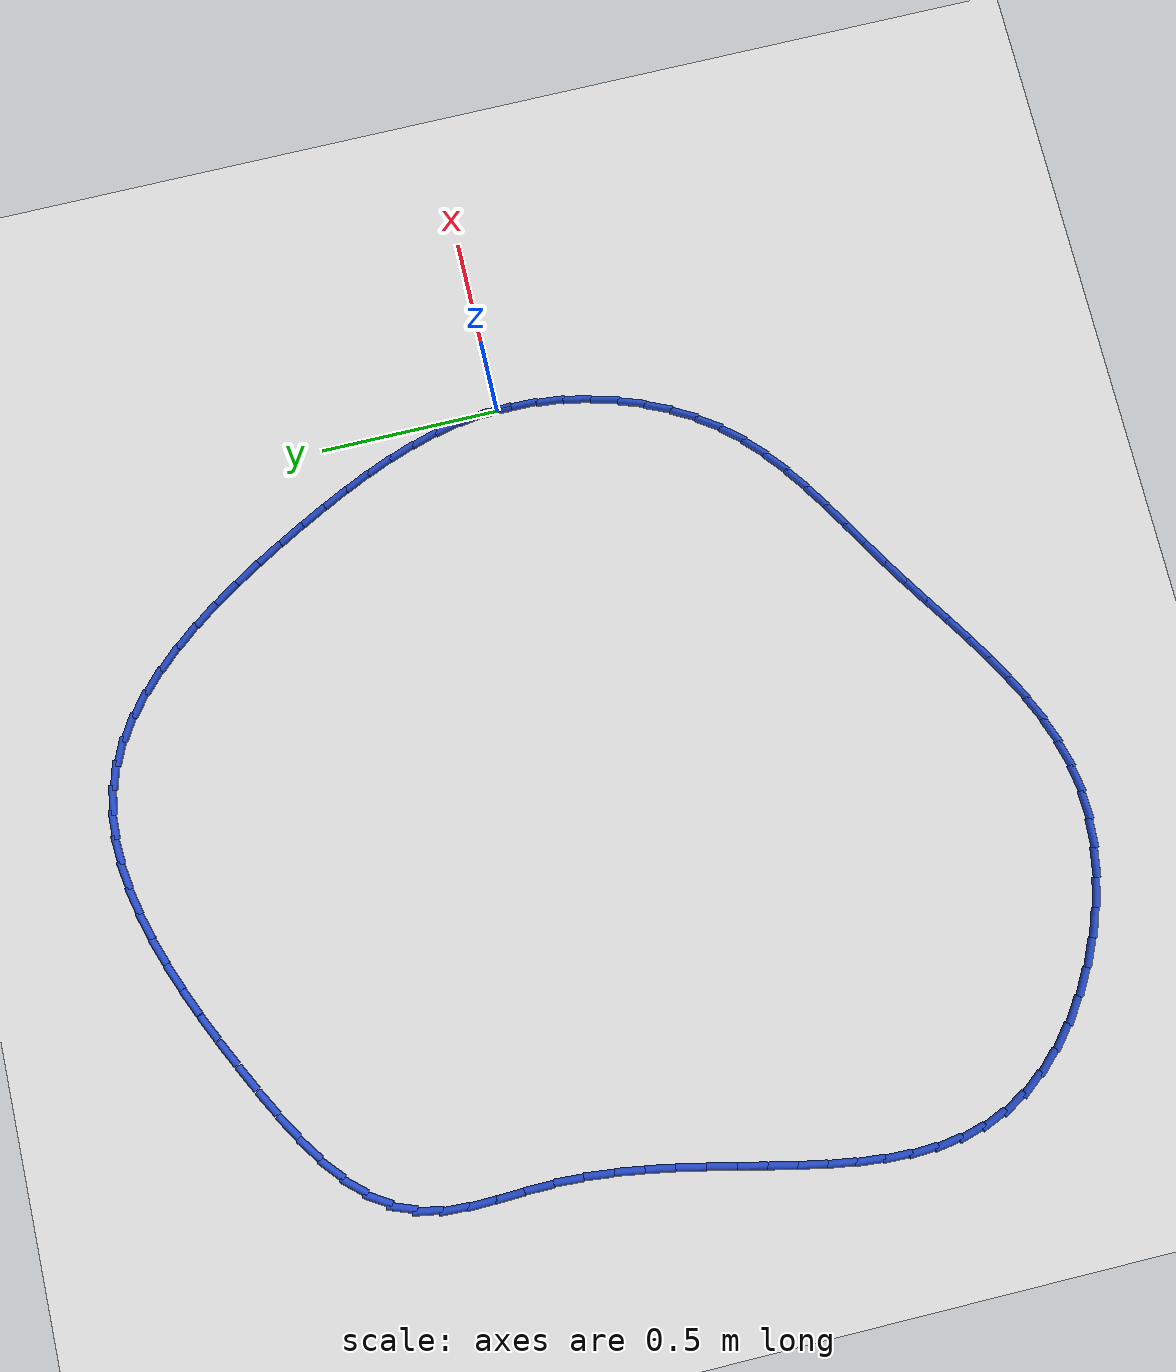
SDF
<sdf version="1.6">
 <world name="default">
  <light name="sun" type="directional">
   <pose>0 0 10 0 -0 0</pose>
   <diffuse>0.8 0.8 0.8 1</diffuse>
   <specular>0.2 0.2 0.2 1</specular>
   <attenuation>
    <range>1000</range>
    <constant>0.9</constant>
    <linear>0.01</linear>
    <quadratic>0.001</quadratic>
   </attenuation>
   <direction>-0.5 0.1 -0.9</direction>
  </light>
  <model name="ground_plane">
   <static>1</static>
   <link name="link">
    <collision name="collision">
     <geometry><plane><normal>0 0 1</normal><size>100 100</size></plane></geometry>
     <surface><friction><ode><mu>100</mu><mu2>50</mu2></ode></friction></surface>
    </collision>
    <visual name="visual">
     <cast_shadows>0</cast_shadows>
     <geometry><plane><normal>0 0 1</normal><size>100 100</size></plane></geometry>
     <material>
      <script><uri>file://media/materials/scripts/gazebo.material</uri><name>Gazebo/WhiteGlow</name></script>
     </material>
    </visual>
   </link>
  </model>
  <gravity>0 0 -9.8</gravity>
  <magnetic_field>6e-06 2.3e-05 -4.2e-05</magnetic_field>
  <atmosphere type="adiabatic"/>
  <physics name="default_physics" default="0" type="ode">
   <max_step_size>0.001</max_step_size>
   <real_time_factor>1</real_time_factor>
   <real_time_update_rate>1000</real_time_update_rate>
  </physics>
  <scene><ambient>0.4 0.4 0.4 1</ambient><background>0.7 0.7 0.7 1</background><shadows>1</shadows></scene>
  <spherical_coordinates>
   <surface_model>EARTH_WGS84</surface_model>
   <latitude_deg>0</latitude_deg>
   <longitude_deg>0</longitude_deg>
   <elevation>0</elevation>
   <heading_deg>0</heading_deg>
  </spherical_coordinates>
  <model name="line">
   <link name="link_0">
    <pose>1.3877787807814457e-16 9.71445146547012e-17 0.01 0 1.57 -1.4955842060642794</pose>
    <collision name="collision">
     <geometry><cylinder><radius>0.01</radius><length>0.08</length></cylinder></geometry>
    </collision>
    <visual name="visual">
     <material>
      <script><name>Gazebo/Blue</name><uri>file://media/materials/scripts/gazebo.material</uri></script>
     </material>
     <geometry><cylinder><radius>0.01</radius><length>0.08</length></cylinder></geometry>
    </visual>
   </link>
   <link name="link_1">
    <pose>-0.005467411567559248 0.0725561007753156 0.01 0 1.57 -1.41364982740094</pose>
    <collision name="collision">
     <geometry><cylinder><radius>0.01</radius><length>0.08</length></cylinder></geometry>
    </collision>
    <visual name="visual">
     <material>
      <script><name>Gazebo/Blue</name><uri>file://media/materials/scripts/gazebo.material</uri></script>
     </material>
     <geometry><cylinder><radius>0.01</radius><length>0.08</length></cylinder></geometry>
    </visual>
   </link>
   <link name="link_2">
    <pose>-0.016756546712793648 0.14380206142366403 0.01 0 1.57 -1.339130992052664</pose>
    <collision name="collision">
     <geometry><cylinder><radius>0.01</radius><length>0.08</length></cylinder></geometry>
    </collision>
    <visual name="visual">
     <material>
      <script><name>Gazebo/Blue</name><uri>file://media/materials/scripts/gazebo.material</uri></script>
     </material>
     <geometry><cylinder><radius>0.01</radius><length>0.08</length></cylinder></geometry>
    </visual>
   </link>
   <link name="link_3">
    <pose>-0.033318861611727854 0.21401090823001373 0.01 0 1.57 -1.2733588835503626</pose>
    <collision name="collision">
     <geometry><cylinder><radius>0.01</radius><length>0.08</length></cylinder></geometry>
    </collision>
    <visual name="visual">
     <material>
      <script><name>Gazebo/Blue</name><uri>file://media/materials/scripts/gazebo.material</uri></script>
     </material>
     <geometry><cylinder><radius>0.01</radius><length>0.08</length></cylinder></geometry>
    </visual>
   </link>
   <link name="link_4">
    <pose>-0.05460581244038674 0.2834556674793333 0.01 0 1.57 -1.217052137117</pose>
    <collision name="collision">
     <geometry><cylinder><radius>0.01</radius><length>0.08</length></cylinder></geometry>
    </collision>
    <visual name="visual">
     <material>
      <script><name>Gazebo/Blue</name><uri>file://media/materials/scripts/gazebo.material</uri></script>
     </material>
     <geometry><cylinder><radius>0.01</radius><length>0.08</length></cylinder></geometry>
    </visual>
   </link>
   <link name="link_5">
    <pose>-0.08006885537479502 0.3524093654565909 0.01 0 1.57 -1.170430817706704</pose>
    <collision name="collision">
     <geometry><cylinder><radius>0.01</radius><length>0.08</length></cylinder></geometry>
    </collision>
    <visual name="visual">
     <material>
      <script><name>Gazebo/Blue</name><uri>file://media/materials/scripts/gazebo.material</uri></script>
     </material>
     <geometry><cylinder><radius>0.01</radius><length>0.08</length></cylinder></geometry>
    </visual>
   </link>
   <link name="link_6">
    <pose>-0.10915944659097758 0.4211450284467553 0.01 0 1.57 -1.1333662098211688</pose>
    <collision name="collision">
     <geometry><cylinder><radius>0.01</radius><length>0.08</length></cylinder></geometry>
    </collision>
    <visual name="visual">
     <material>
      <script><name>Gazebo/Blue</name><uri>file://media/materials/scripts/gazebo.material</uri></script>
     </material>
     <geometry><cylinder><radius>0.01</radius><length>0.08</length></cylinder></geometry>
    </visual>
   </link>
   <link name="link_7">
    <pose>-0.14132904226495924 0.48993568273479476 0.01 0 1.57 -1.1055213052379582</pose>
    <collision name="collision">
     <geometry><cylinder><radius>0.01</radius><length>0.08</length></cylinder></geometry>
    </collision>
    <visual name="visual">
     <material>
      <script><name>Gazebo/Blue</name><uri>file://media/materials/scripts/gazebo.material</uri></script>
     </material>
     <geometry><cylinder><radius>0.01</radius><length>0.08</length></cylinder></geometry>
    </visual>
   </link>
   <link name="link_8">
    <pose>-0.17602909857276472 0.5590543546056775 0.01 0 1.57 -1.0860036794157346</pose>
    <collision name="collision">
     <geometry><cylinder><radius>0.01</radius><length>0.08</length></cylinder></geometry>
    </collision>
    <visual name="visual">
     <material>
      <script><name>Gazebo/Blue</name><uri>file://media/materials/scripts/gazebo.material</uri></script>
     </material>
     <geometry><cylinder><radius>0.01</radius><length>0.08</length></cylinder></geometry>
    </visual>
   </link>
   <link name="link_9">
    <pose>-0.21273218468617577 0.6287369993127941 0.01 0 1.57 -1.0672026564182744</pose>
    <collision name="collision">
     <geometry><cylinder><radius>0.01</radius><length>0.08</length></cylinder></geometry>
    </collision>
    <visual name="visual">
     <material>
      <script><name>Gazebo/Blue</name><uri>file://media/materials/scripts/gazebo.material</uri></script>
     </material>
     <geometry><cylinder><radius>0.01</radius><length>0.08</length></cylinder></geometry>
    </visual>
   </link>
   <link name="link_10">
    <pose>-0.2512441236565394 0.6986344317895505 0.01 0 1.57 -1.0430517549712204</pose>
    <collision name="collision">
     <geometry><cylinder><radius>0.01</radius><length>0.08</length></cylinder></geometry>
    </collision>
    <visual name="visual">
     <material>
      <script><name>Gazebo/Blue</name><uri>file://media/materials/scripts/gazebo.material</uri></script>
     </material>
     <geometry><cylinder><radius>0.01</radius><length>0.08</length></cylinder></geometry>
    </visual>
   </link>
   <link name="link_11">
    <pose>-0.2916364467260727 0.767930926036564 0.01 0 1.57 -1.0128877663310525</pose>
    <collision name="collision">
     <geometry><cylinder><radius>0.01</radius><length>0.08</length></cylinder></geometry>
    </collision>
    <visual name="visual">
     <material>
      <script><name>Gazebo/Blue</name><uri>file://media/materials/scripts/gazebo.material</uri></script>
     </material>
     <geometry><cylinder><radius>0.01</radius><length>0.08</length></cylinder></geometry>
    </visual>
   </link>
   <link name="link_12">
    <pose>-0.333988071356721 0.8357977870382143 0.01 0 1.57 -0.975957592531371</pose>
    <collision name="collision">
     <geometry><cylinder><radius>0.01</radius><length>0.08</length></cylinder></geometry>
    </collision>
    <visual name="visual">
     <material>
      <script><name>Gazebo/Blue</name><uri>file://media/materials/scripts/gazebo.material</uri></script>
     </material>
     <geometry><cylinder><radius>0.01</radius><length>0.08</length></cylinder></geometry>
    </visual>
   </link>
   <link name="link_13">
    <pose>-0.37837791501042994 0.9014063197788814 0.01 0 1.57 -0.9312391922005855</pose>
    <collision name="collision">
     <geometry><cylinder><radius>0.01</radius><length>0.08</length></cylinder></geometry>
    </collision>
    <visual name="visual">
     <material>
      <script><name>Gazebo/Blue</name><uri>file://media/materials/scripts/gazebo.material</uri></script>
     </material>
     <geometry><cylinder><radius>0.01</radius><length>0.08</length></cylinder></geometry>
    </visual>
   </link>
   <link name="link_14">
    <pose>-0.4248848951491446 0.9639278292429448 0.01 0 1.57 -0.8774203138194414</pose>
    <collision name="collision">
     <geometry><cylinder><radius>0.01</radius><length>0.08</length></cylinder></geometry>
    </collision>
    <visual name="visual">
     <material>
      <script><name>Gazebo/Blue</name><uri>file://media/materials/scripts/gazebo.material</uri></script>
     </material>
     <geometry><cylinder><radius>0.01</radius><length>0.08</length></cylinder></geometry>
    </visual>
   </link>
   <link name="link_15">
    <pose>-0.4735879292348106 1.0225336204147848 0.01 0 1.57 -0.8128939918813674</pose>
    <collision name="collision">
     <geometry><cylinder><radius>0.01</radius><length>0.08</length></cylinder></geometry>
    </collision>
    <visual name="visual">
     <material>
      <script><name>Gazebo/Blue</name><uri>file://media/materials/scripts/gazebo.material</uri></script>
     </material>
     <geometry><cylinder><radius>0.01</radius><length>0.08</length></cylinder></geometry>
    </visual>
   </link>
   <link name="link_16">
    <pose>-0.5245659347293732 1.0763949982787808 0.01 0 1.57 -0.7358067305513654</pose>
    <collision name="collision">
     <geometry><cylinder><radius>0.01</radius><length>0.08</length></cylinder></geometry>
    </collision>
    <visual name="visual">
     <material>
      <script><name>Gazebo/Blue</name><uri>file://media/materials/scripts/gazebo.material</uri></script>
     </material>
     <geometry><cylinder><radius>0.01</radius><length>0.08</length></cylinder></geometry>
    </visual>
   </link>
   <link name="link_17">
    <pose>-0.5778978290947777 1.1246832678193124 0.01 0 1.57 -0.6442230747430463</pose>
    <collision name="collision">
     <geometry><cylinder><radius>0.01</radius><length>0.08</length></cylinder></geometry>
    </collision>
    <visual name="visual">
     <material>
      <script><name>Gazebo/Blue</name><uri>file://media/materials/scripts/gazebo.material</uri></script>
     </material>
     <geometry><cylinder><radius>0.01</radius><length>0.08</length></cylinder></geometry>
    </visual>
   </link>
   <link name="link_18">
    <pose>-0.6336625297929697 1.1665697340207597 0.01 0 1.57 -0.5365003749126304</pose>
    <collision name="collision">
     <geometry><cylinder><radius>0.01</radius><length>0.08</length></cylinder></geometry>
    </collision>
    <visual name="visual">
     <material>
      <script><name>Gazebo/Blue</name><uri>file://media/materials/scripts/gazebo.material</uri></script>
     </material>
     <geometry><cylinder><radius>0.01</radius><length>0.08</length></cylinder></geometry>
    </visual>
   </link>
   <link name="link_19">
    <pose>-0.6919389542858945 1.2012257018675028 0.01 0 1.57 -0.4119612640818675</pose>
    <collision name="collision">
     <geometry><cylinder><radius>0.01</radius><length>0.08</length></cylinder></geometry>
    </collision>
    <visual name="visual">
     <material>
      <script><name>Gazebo/Blue</name><uri>file://media/materials/scripts/gazebo.material</uri></script>
     </material>
     <geometry><cylinder><radius>0.01</radius><length>0.08</length></cylinder></geometry>
    </visual>
   </link>
   <link name="link_20">
    <pose>-0.7528060200354976 1.227822476343921 0.01 0 1.57 -0.27530872110064153</pose>
    <collision name="collision">
     <geometry><cylinder><radius>0.01</radius><length>0.08</length></cylinder></geometry>
    </collision>
    <visual name="visual">
     <material>
      <script><name>Gazebo/Blue</name><uri>file://media/materials/scripts/gazebo.material</uri></script>
     </material>
     <geometry><cylinder><radius>0.01</radius><length>0.08</length></cylinder></geometry>
    </visual>
   </link>
   <link name="link_21">
    <pose>-0.8162886082028623 1.2457551611444366 0.01 0 1.57 -0.14541691434787443</pose>
    <collision name="collision">
     <geometry><cylinder><radius>0.01</radius><length>0.08</length></cylinder></geometry>
    </collision>
    <visual name="visual">
     <material>
      <script><name>Gazebo/Blue</name><uri>file://media/materials/scripts/gazebo.material</uri></script>
     </material>
     <geometry><cylinder><radius>0.01</radius><length>0.08</length></cylinder></geometry>
    </visual>
   </link>
   <link name="link_22">
    <pose>-0.8821737183862176 1.255404078900756 0.01 0 1.57 -0.029641752607562417</pose>
    <collision name="collision">
     <geometry><cylinder><radius>0.01</radius><length>0.08</length></cylinder></geometry>
    </collision>
    <visual name="visual">
     <material>
      <script><name>Gazebo/Blue</name><uri>file://media/materials/scripts/gazebo.material</uri></script>
     </material>
     <geometry><cylinder><radius>0.01</radius><length>0.08</length></cylinder></geometry>
    </visual>
   </link>
   <link name="link_23">
    <pose>-0.9501829101280536 1.257420581160816 0.01 0 1.57 0.07095028898332861</pose>
    <collision name="collision">
     <geometry><cylinder><radius>0.01</radius><length>0.08</length></cylinder></geometry>
    </collision>
    <visual name="visual">
     <material>
      <script><name>Gazebo/Blue</name><uri>file://media/materials/scripts/gazebo.material</uri></script>
     </material>
     <geometry><cylinder><radius>0.01</radius><length>0.08</length></cylinder></geometry>
    </visual>
   </link>
   <link name="link_24">
    <pose>-1.0200377410334396 1.2524560274966354 0.01 0 1.57 0.15683529921645634</pose>
    <collision name="collision">
     <geometry><cylinder><radius>0.01</radius><length>0.08</length></cylinder></geometry>
    </collision>
    <visual name="visual">
     <material>
      <script><name>Gazebo/Blue</name><uri>file://media/materials/scripts/gazebo.material</uri></script>
     </material>
     <geometry><cylinder><radius>0.01</radius><length>0.08</length></cylinder></geometry>
    </visual>
   </link>
   <link name="link_25">
    <pose>-1.091459768707447 1.2411617774802346 0.01 0 1.57 0.22931981066903037</pose>
    <collision name="collision">
     <geometry><cylinder><radius>0.01</radius><length>0.08</length></cylinder></geometry>
    </collision>
    <visual name="visual">
     <material>
      <script><name>Gazebo/Blue</name><uri>file://media/materials/scripts/gazebo.material</uri></script>
     </material>
     <geometry><cylinder><radius>0.01</radius><length>0.08</length></cylinder></geometry>
    </visual>
   </link>
   <link name="link_26">
    <pose>-1.1641705507551465 1.2241891906836333 0.01 0 1.57 0.29000307534637887</pose>
    <collision name="collision">
     <geometry><cylinder><radius>0.01</radius><length>0.08</length></cylinder></geometry>
    </collision>
    <visual name="visual">
     <material>
      <script><name>Gazebo/Blue</name><uri>file://media/materials/scripts/gazebo.material</uri></script>
     </material>
     <geometry><cylinder><radius>0.01</radius><length>0.08</length></cylinder></geometry>
    </visual>
   </link>
   <link name="link_27">
    <pose>-1.2378916447816086 1.2021896266788512 0.01 0 1.57 0.34045859905072073</pose>
    <collision name="collision">
     <geometry><cylinder><radius>0.01</radius><length>0.08</length></cylinder></geometry>
    </collision>
    <visual name="visual">
     <material>
      <script><name>Gazebo/Blue</name><uri>file://media/materials/scripts/gazebo.material</uri></script>
     </material>
     <geometry><cylinder><radius>0.01</radius><length>0.08</length></cylinder></geometry>
    </visual>
   </link>
   <link name="link_28">
    <pose>-1.3123446083919037 1.175814445037908 0.01 0 1.57 0.3820807222219598</pose>
    <collision name="collision">
     <geometry><cylinder><radius>0.01</radius><length>0.08</length></cylinder></geometry>
    </collision>
    <visual name="visual">
     <material>
      <script><name>Gazebo/Blue</name><uri>file://media/materials/scripts/gazebo.material</uri></script>
     </material>
     <geometry><cylinder><radius>0.01</radius><length>0.08</length></cylinder></geometry>
    </visual>
   </link>
   <link name="link_29">
    <pose>-1.3872509991911026 1.1457150053328244 0.01 0 1.57 0.4160293666342314</pose>
    <collision name="collision">
     <geometry><cylinder><radius>0.01</radius><length>0.08</length></cylinder></geometry>
    </collision>
    <visual name="visual">
     <material>
      <script><name>Gazebo/Blue</name><uri>file://media/materials/scripts/gazebo.material</uri></script>
     </material>
     <geometry><cylinder><radius>0.01</radius><length>0.08</length></cylinder></geometry>
    </visual>
   </link>
   <link name="link_30">
    <pose>-1.4623323747842765 1.112542667135619 0.01 0 1.57 0.4432237739069377</pose>
    <collision name="collision">
     <geometry><cylinder><radius>0.01</radius><length>0.08</length></cylinder></geometry>
    </collision>
    <visual name="visual">
     <material>
      <script><name>Gazebo/Blue</name><uri>file://media/materials/scripts/gazebo.material</uri></script>
     </material>
     <geometry><cylinder><radius>0.01</radius><length>0.08</length></cylinder></geometry>
    </visual>
   </link>
   <link name="link_31">
    <pose>-1.5373102927764952 1.0769487900183115 0.01 0 1.57 0.464355679751144</pose>
    <collision name="collision">
     <geometry><cylinder><radius>0.01</radius><length>0.08</length></cylinder></geometry>
    </collision>
    <visual name="visual">
     <material>
      <script><name>Gazebo/Blue</name><uri>file://media/materials/scripts/gazebo.material</uri></script>
     </material>
     <geometry><cylinder><radius>0.01</radius><length>0.08</length></cylinder></geometry>
    </visual>
   </link>
   <link name="link_32">
    <pose>-1.61190631077283 1.0395847335529227 0.01 0 1.57 0.4817562809188126</pose>
    <collision name="collision">
     <geometry><cylinder><radius>0.01</radius><length>0.08</length></cylinder></geometry>
    </collision>
    <visual name="visual">
     <material>
      <script><name>Gazebo/Blue</name><uri>file://media/materials/scripts/gazebo.material</uri></script>
     </material>
     <geometry><cylinder><radius>0.01</radius><length>0.08</length></cylinder></geometry>
    </visual>
   </link>
   <link name="link_33">
    <pose>-1.685719767778096 1.0009917229625414 0.01 0 1.57 0.5097504942388836</pose>
    <collision name="collision">
     <geometry><cylinder><radius>0.01</radius><length>0.08</length></cylinder></geometry>
    </collision>
    <visual name="visual">
     <material>
      <script><name>Gazebo/Blue</name><uri>file://media/materials/scripts/gazebo.material</uri></script>
     </material>
     <geometry><cylinder><radius>0.01</radius><length>0.08</length></cylinder></geometry>
    </visual>
   </link>
   <link name="link_34">
    <pose>-1.7574447391195878 0.9608952269035314 0.01 0 1.57 0.5563551199918052</pose>
    <collision name="collision">
     <geometry><cylinder><radius>0.01</radius><length>0.08</length></cylinder></geometry>
    </collision>
    <visual name="visual">
     <material>
      <script><name>Gazebo/Blue</name><uri>file://media/materials/scripts/gazebo.material</uri></script>
     </material>
     <geometry><cylinder><radius>0.01</radius><length>0.08</length></cylinder></geometry>
    </visual>
   </link>
   <link name="link_35">
    <pose>-1.8253687775407297 0.9186543859937546 0.01 0 1.57 0.6250091149030332</pose>
    <collision name="collision">
     <geometry><cylinder><radius>0.01</radius><length>0.08</length></cylinder></geometry>
    </collision>
    <visual name="visual">
     <material>
      <script><name>Gazebo/Blue</name><uri>file://media/materials/scripts/gazebo.material</uri></script>
     </material>
     <geometry><cylinder><radius>0.01</radius><length>0.08</length></cylinder></geometry>
    </visual>
   </link>
   <link name="link_36">
    <pose>-1.8877775014348808 0.8736265977580855 0.01 0 1.57 0.720630471023452</pose>
    <collision name="collision">
     <geometry><cylinder><radius>0.01</radius><length>0.08</length></cylinder></geometry>
    </collision>
    <visual name="visual">
     <material>
      <script><name>Gazebo/Blue</name><uri>file://media/materials/scripts/gazebo.material</uri></script>
     </material>
     <geometry><cylinder><radius>0.01</radius><length>0.08</length></cylinder></geometry>
    </visual>
   </link>
   <link name="link_37">
    <pose>-1.9429565291954016 0.8251692597213972 0.01 0 1.57 0.8490449418464202</pose>
    <collision name="collision">
     <geometry><cylinder><radius>0.01</radius><length>0.08</length></cylinder></geometry>
    </collision>
    <visual name="visual">
     <material>
      <script><name>Gazebo/Blue</name><uri>file://media/materials/scripts/gazebo.material</uri></script>
     </material>
     <geometry><cylinder><radius>0.01</radius><length>0.08</length></cylinder></geometry>
    </visual>
   </link>
   <link name="link_38">
    <pose>-1.9891914792156498 0.7726397694085639 0.01 0 1.57 1.0147280028547123</pose>
    <collision name="collision">
     <geometry><cylinder><radius>0.01</radius><length>0.08</length></cylinder></geometry>
    </collision>
    <visual name="visual">
     <material>
      <script><name>Gazebo/Blue</name><uri>file://media/materials/scripts/gazebo.material</uri></script>
     </material>
     <geometry><cylinder><radius>0.01</radius><length>0.08</length></cylinder></geometry>
    </visual>
   </link>
   <link name="link_39">
    <pose>-2.0247679698889858 0.7153955243444597 0.01 0 1.57 1.2150935376957075</pose>
    <collision name="collision">
     <geometry><cylinder><radius>0.01</radius><length>0.08</length></cylinder></geometry>
    </collision>
    <visual name="visual">
     <material>
      <script><name>Gazebo/Blue</name><uri>file://media/materials/scripts/gazebo.material</uri></script>
     </material>
     <geometry><cylinder><radius>0.01</radius><length>0.08</length></cylinder></geometry>
    </visual>
   </link>
   <link name="link_40">
    <pose>-2.048019167311735 0.6528089758933149 0.01 0 1.57 1.4042646456864396</pose>
    <collision name="collision">
     <geometry><cylinder><radius>0.01</radius><length>0.08</length></cylinder></geometry>
    </collision>
    <visual name="visual">
     <material>
      <script><name>Gazebo/Blue</name><uri>file://media/materials/scripts/gazebo.material</uri></script>
     </material>
     <geometry><cylinder><radius>0.01</radius><length>0.08</length></cylinder></geometry>
    </visual>
   </link>
   <link name="link_41">
    <pose>-2.0594282837005364 0.5849332907196741 0.01 0 1.57 1.5288153546406225</pose>
    <collision name="collision">
     <geometry><cylinder><radius>0.01</radius><length>0.08</length></cylinder></geometry>
    </collision>
    <visual name="visual">
     <material>
      <script><name>Gazebo/Blue</name><uri>file://media/materials/scripts/gazebo.material</uri></script>
     </material>
     <geometry><cylinder><radius>0.01</radius><length>0.08</length></cylinder></geometry>
    </visual>
   </link>
   <link name="link_42">
    <pose>-2.0624597387773296 0.5127655006187404 0.01 0 1.57 -1.5487499628972865</pose>
    <collision name="collision">
     <geometry><cylinder><radius>0.01</radius><length>0.08</length></cylinder></geometry>
    </collision>
    <visual name="visual">
     <material>
      <script><name>Gazebo/Blue</name><uri>file://media/materials/scripts/gazebo.material</uri></script>
     </material>
     <geometry><cylinder><radius>0.01</radius><length>0.08</length></cylinder></geometry>
    </visual>
   </link>
   <link name="link_43">
    <pose>-2.060797318865984 0.43737208994345433 0.01 0 1.57 -1.536349341656345</pose>
    <collision name="collision">
     <geometry><cylinder><radius>0.01</radius><length>0.08</length></cylinder></geometry>
    </collision>
    <visual name="visual">
     <material>
      <script><name>Gazebo/Blue</name><uri>file://media/materials/scripts/gazebo.material</uri></script>
     </material>
     <geometry><cylinder><radius>0.01</radius><length>0.08</length></cylinder></geometry>
    </visual>
   </link>
   <link name="link_44">
    <pose>-2.058124810290367 0.3598195430467573 0.01 0 1.57 -1.5706732274415427</pose>
    <collision name="collision">
     <geometry><cylinder><radius>0.01</radius><length>0.08</length></cylinder></geometry>
    </collision>
    <visual name="visual">
     <material>
      <script><name>Gazebo/Blue</name><uri>file://media/materials/scripts/gazebo.material</uri></script>
     </material>
     <geometry><cylinder><radius>0.01</radius><length>0.08</length></cylinder></geometry>
    </visual>
   </link>
   <link name="link_45">
    <pose>-2.0581151288574886 0.2811722344637428 0.01 0 1.57 1.5088180892669445</pose>
    <collision name="collision">
     <geometry><cylinder><radius>0.01</radius><length>0.08</length></cylinder></geometry>
    </collision>
    <visual name="visual">
     <material>
      <script><name>Gazebo/Blue</name><uri>file://media/materials/scripts/gazebo.material</uri></script>
     </material>
     <geometry><cylinder><radius>0.01</radius><length>0.08</length></cylinder></geometry>
    </visual>
   </link>
   <link name="link_46">
    <pose>-2.063014866594892 0.20221770889655863 0.01 0 1.57 1.454600154294033</pose>
    <collision name="collision">
     <geometry><cylinder><radius>0.01</radius><length>0.08</length></cylinder></geometry>
    </collision>
    <visual name="visual">
     <material>
      <script><name>Gazebo/Blue</name><uri>file://media/materials/scripts/gazebo.material</uri></script>
     </material>
     <geometry><cylinder><radius>0.01</radius><length>0.08</length></cylinder></geometry>
    </visual>
   </link>
   <link name="link_47">
    <pose>-2.0722386833401383 0.1231938719497268 0.01 0 1.57 1.412126551946561</pose>
    <collision name="collision">
     <geometry><cylinder><radius>0.01</radius><length>0.08</length></cylinder></geometry>
    </collision>
    <visual name="visual">
     <material>
      <script><name>Gazebo/Blue</name><uri>file://media/materials/scripts/gazebo.material</uri></script>
     </material>
     <geometry><cylinder><radius>0.01</radius><length>0.08</length></cylinder></geometry>
    </visual>
   </link>
   <link name="link_48">
    <pose>-2.084867073932814 0.04427377239659573 0.01 0 1.57 1.3809337882895611</pose>
    <collision name="collision">
     <geometry><cylinder><radius>0.01</radius><length>0.08</length></cylinder></geometry>
    </collision>
    <visual name="visual">
     <material>
      <script><name>Gazebo/Blue</name><uri>file://media/materials/scripts/gazebo.material</uri></script>
     </material>
     <geometry><cylinder><radius>0.01</radius><length>0.08</length></cylinder></geometry>
    </visual>
   </link>
   <link name="link_49">
    <pose>-2.099980533212513 -0.03436954098948704 0.01 0 1.57 1.3606412942540402</pose>
    <collision name="collision">
     <geometry><cylinder><radius>0.01</radius><length>0.08</length></cylinder></geometry>
    </collision>
    <visual name="visual">
     <material>
      <script><name>Gazebo/Blue</name><uri>file://media/materials/scripts/gazebo.material</uri></script>
     </material>
     <geometry><cylinder><radius>0.01</radius><length>0.08</length></cylinder></geometry>
    </visual>
   </link>
   <link name="link_50">
    <pose>-2.116659556018827 -0.1125630194351728 0.01 0 1.57 1.351056752786211</pose>
    <collision name="collision">
     <geometry><cylinder><radius>0.01</radius><length>0.08</length></cylinder></geometry>
    </collision>
    <visual name="visual">
     <material>
      <script><name>Gazebo/Blue</name><uri>file://media/materials/scripts/gazebo.material</uri></script>
     </material>
     <geometry><cylinder><radius>0.01</radius><length>0.08</length></cylinder></geometry>
    </visual>
   </link>
   <link name="link_51">
    <pose>-2.1339846371913445 -0.19013361416711308 0.01 0 1.57 1.3522440792732102</pose>
    <collision name="collision">
     <geometry><cylinder><radius>0.01</radius><length>0.08</length></cylinder></geometry>
    </collision>
    <visual name="visual">
     <material>
      <script><name>Gazebo/Blue</name><uri>file://media/materials/scripts/gazebo.material</uri></script>
     </material>
     <geometry><cylinder><radius>0.01</radius><length>0.08</length></cylinder></geometry>
    </visual>
   </link>
   <link name="link_52">
    <pose>-2.1510362715696587 -0.2669082764119598 0.01 0 1.57 1.3645687727887315</pose>
    <collision name="collision">
     <geometry><cylinder><radius>0.01</radius><length>0.08</length></cylinder></geometry>
    </collision>
    <visual name="visual">
     <material>
      <script><name>Gazebo/Blue</name><uri>file://media/materials/scripts/gazebo.material</uri></script>
     </material>
     <geometry><cylinder><radius>0.01</radius><length>0.08</length></cylinder></geometry>
    </visual>
   </link>
   <link name="link_53">
    <pose>-2.16689495399336 -0.3427139573963646 0.01 0 1.57 1.388726533658649</pose>
    <collision name="collision">
     <geometry><cylinder><radius>0.01</radius><length>0.08</length></cylinder></geometry>
    </collision>
    <visual name="visual">
     <material>
      <script><name>Gazebo/Blue</name><uri>file://media/materials/scripts/gazebo.material</uri></script>
     </material>
     <geometry><cylinder><radius>0.01</radius><length>0.08</length></cylinder></geometry>
    </visual>
   </link>
   <link name="link_54">
    <pose>-2.18064117930204 -0.41737760834697907 0.01 0 1.57 1.4257489332023692</pose>
    <collision name="collision">
     <geometry><cylinder><radius>0.01</radius><length>0.08</length></cylinder></geometry>
    </collision>
    <visual name="visual">
     <material>
      <script><name>Gazebo/Blue</name><uri>file://media/materials/scripts/gazebo.material</uri></script>
     </material>
     <geometry><cylinder><radius>0.01</radius><length>0.08</length></cylinder></geometry>
    </visual>
   </link>
   <link name="link_55">
    <pose>-2.191355442335289 -0.4907261804904549 0.01 0 1.57 1.4769625677413531</pose>
    <collision name="collision">
     <geometry><cylinder><radius>0.01</radius><length>0.08</length></cylinder></geometry>
    </collision>
    <visual name="visual">
     <material>
      <script><name>Gazebo/Blue</name><uri>file://media/materials/scripts/gazebo.material</uri></script>
     </material>
     <geometry><cylinder><radius>0.01</radius><length>0.08</length></cylinder></geometry>
    </visual>
   </link>
   <link name="link_56">
    <pose>-2.1981182379326993 -0.5625866250534439 0.01 0 1.57 1.5438535215513631</pose>
    <collision name="collision">
     <geometry><cylinder><radius>0.01</radius><length>0.08</length></cylinder></geometry>
    </collision>
    <visual name="visual">
     <material>
      <script><name>Gazebo/Blue</name><uri>file://media/materials/scripts/gazebo.material</uri></script>
     </material>
     <geometry><cylinder><radius>0.01</radius><length>0.08</length></cylinder></geometry>
    </visual>
   </link>
   <link name="link_57">
    <pose>-2.2000100609338618 -0.6327858932625977 0.01 0 1.57 -1.5138310041667915</pose>
    <collision name="collision">
     <geometry><cylinder><radius>0.01</radius><length>0.08</length></cylinder></geometry>
    </collision>
    <visual name="visual">
     <material>
      <script><name>Gazebo/Blue</name><uri>file://media/materials/scripts/gazebo.material</uri></script>
     </material>
     <geometry><cylinder><radius>0.01</radius><length>0.08</length></cylinder></geometry>
    </visual>
   </link>
   <link name="link_58">
    <pose>-2.1961114061783675 -0.7011509363445675 0.01 0 1.57 -1.4122675120011015</pose>
    <collision name="collision">
     <geometry><cylinder><radius>0.01</radius><length>0.08</length></cylinder></geometry>
    </collision>
    <visual name="visual">
     <material>
      <script><name>Gazebo/Blue</name><uri>file://media/materials/scripts/gazebo.material</uri></script>
     </material>
     <geometry><cylinder><radius>0.01</radius><length>0.08</length></cylinder></geometry>
    </visual>
   </link>
   <link name="link_59">
    <pose>-2.185502768505807 -0.7675087055260059 0.01 0 1.57 -1.2939131517797329</pose>
    <collision name="collision">
     <geometry><cylinder><radius>0.01</radius><length>0.08</length></cylinder></geometry>
    </collision>
    <visual name="visual">
     <material>
      <script><name>Gazebo/Blue</name><uri>file://media/materials/scripts/gazebo.material</uri></script>
     </material>
     <geometry><cylinder><radius>0.01</radius><length>0.08</length></cylinder></geometry>
    </visual>
   </link>
   <link name="link_60">
    <pose>-2.1672646427557716 -0.8316861520335641 0.01 0 1.57 -1.1619336218504865</pose>
    <collision name="collision">
     <geometry><cylinder><radius>0.01</radius><length>0.08</length></cylinder></geometry>
    </collision>
    <visual name="visual">
     <material>
      <script><name>Gazebo/Blue</name><uri>file://media/materials/scripts/gazebo.material</uri></script>
     </material>
     <geometry><cylinder><radius>0.01</radius><length>0.08</length></cylinder></geometry>
    </visual>
   </link>
   <link name="link_61">
    <pose>-2.1404775237678537 -0.8935102270938942 0.01 0 1.57 -1.023695961944321</pose>
    <collision name="collision">
     <geometry><cylinder><radius>0.01</radius><length>0.08</length></cylinder></geometry>
    </collision>
    <visual name="visual">
     <material>
      <script><name>Gazebo/Blue</name><uri>file://media/materials/scripts/gazebo.material</uri></script>
     </material>
     <geometry><cylinder><radius>0.01</radius><length>0.08</length></cylinder></geometry>
    </visual>
   </link>
   <link name="link_62">
    <pose>-2.1043757010365693 -0.9527787848364397 0.01 0 1.57 -0.8969425129578544</pose>
    <collision name="collision">
     <geometry><cylinder><radius>0.01</radius><length>0.08</length></cylinder></geometry>
    </collision>
    <visual name="visual">
     <material>
      <script><name>Gazebo/Blue</name><uri>file://media/materials/scripts/gazebo.material</uri></script>
     </material>
     <geometry><cylinder><radius>0.01</radius><length>0.08</length></cylinder></geometry>
    </visual>
   </link>
   <link name="link_63">
    <pose>-2.0594370215755142 -1.0090544051931485 0.01 0 1.57 -0.7857376474460932</pose>
    <collision name="collision">
     <geometry><cylinder><radius>0.01</radius><length>0.08</length></cylinder></geometry>
    </collision>
    <visual name="visual">
     <material>
      <script><name>Gazebo/Blue</name><uri>file://media/materials/scripts/gazebo.material</uri></script>
     </material>
     <geometry><cylinder><radius>0.01</radius><length>0.08</length></cylinder></geometry>
    </visual>
   </link>
   <link name="link_64">
    <pose>-2.0067414706448385 -1.0617857468735388 0.01 0 1.57 -0.6863421864945508</pose>
    <collision name="collision">
     <geometry><cylinder><radius>0.01</radius><length>0.08</length></cylinder></geometry>
    </collision>
    <visual name="visual">
     <material>
      <script><name>Gazebo/Blue</name><uri>file://media/materials/scripts/gazebo.material</uri></script>
     </material>
     <geometry><cylinder><radius>0.01</radius><length>0.08</length></cylinder></geometry>
    </visual>
   </link>
   <link name="link_65">
    <pose>-1.9473729767192203 -1.1104207225527694 0.01 0 1.57 -0.5952309810633215</pose>
    <collision name="collision">
     <geometry><cylinder><radius>0.01</radius><length>0.08</length></cylinder></geometry>
    </collision>
    <visual name="visual">
     <material>
      <script><name>Gazebo/Blue</name><uri>file://media/materials/scripts/gazebo.material</uri></script>
     </material>
     <geometry><cylinder><radius>0.01</radius><length>0.08</length></cylinder></geometry>
    </visual>
   </link>
   <link name="link_66">
    <pose>-1.882415468273339 -1.154407244906 0.01 0 1.57 -0.5092482719949613</pose>
    <collision name="collision">
     <geometry><cylinder><radius>0.01</radius><length>0.08</length></cylinder></geometry>
    </collision>
    <visual name="visual">
     <material>
      <script><name>Gazebo/Blue</name><uri>file://media/materials/scripts/gazebo.material</uri></script>
     </material>
     <geometry><cylinder><radius>0.01</radius><length>0.08</length></cylinder></geometry>
    </visual>
   </link>
   <link name="link_67">
    <pose>-1.812952873781875 -1.1931932266083909 0.01 0 1.57 -0.42553960201838076</pose>
    <collision name="collision">
     <geometry><cylinder><radius>0.01</radius><length>0.08</length></cylinder></geometry>
    </collision>
    <visual name="visual">
     <material>
      <script><name>Gazebo/Blue</name><uri>file://media/materials/scripts/gazebo.material</uri></script>
     </material>
     <geometry><cylinder><radius>0.01</radius><length>0.08</length></cylinder></geometry>
    </visual>
   </link>
   <link name="link_68">
    <pose>-1.7400691217195066 -1.2262265803351013 0.01 0 1.57 -0.3414195695216346</pose>
    <collision name="collision">
     <geometry><cylinder><radius>0.01</radius><length>0.08</length></cylinder></geometry>
    </collision>
    <visual name="visual">
     <material>
      <script><name>Gazebo/Blue</name><uri>file://media/materials/scripts/gazebo.material</uri></script>
     </material>
     <geometry><cylinder><radius>0.01</radius><length>0.08</length></cylinder></geometry>
    </visual>
   </link>
   <link name="link_69">
    <pose>-1.6648481405609135 -1.2529552187612913 0.01 0 1.57 -0.2542274739489198</pose>
    <collision name="collision">
     <geometry><cylinder><radius>0.01</radius><length>0.08</length></cylinder></geometry>
    </collision>
    <visual name="visual">
     <material>
      <script><name>Gazebo/Blue</name><uri>file://media/materials/scripts/gazebo.material</uri></script>
     </material>
     <geometry><cylinder><radius>0.01</radius><length>0.08</length></cylinder></geometry>
    </visual>
   </link>
   <link name="link_70">
    <pose>-1.588373858780775 -1.2728270545621199 0.01 0 1.57 -0.16119807215022106</pose>
    <collision name="collision">
     <geometry><cylinder><radius>0.01</radius><length>0.08</length></cylinder></geometry>
    </collision>
    <visual name="visual">
     <material>
      <script><name>Gazebo/Blue</name><uri>file://media/materials/scripts/gazebo.material</uri></script>
     </material>
     <geometry><cylinder><radius>0.01</radius><length>0.08</length></cylinder></geometry>
    </visual>
   </link>
   <link name="link_71">
    <pose>-1.5117302048537715 -1.285290000412747 0.01 0 1.57 -0.05937844844639987</pose>
    <collision name="collision">
     <geometry><cylinder><radius>0.01</radius><length>0.08</length></cylinder></geometry>
    </collision>
    <visual name="visual">
     <material>
      <script><name>Gazebo/Blue</name><uri>file://media/materials/scripts/gazebo.material</uri></script>
     </material>
     <geometry><cylinder><radius>0.01</radius><length>0.08</length></cylinder></geometry>
    </visual>
   </link>
   <link name="link_72">
    <pose>-1.4360011072545809 -1.2897919689883324 0.01 0 1.57 0.05373100176645707</pose>
    <collision name="collision">
     <geometry><cylinder><radius>0.01</radius><length>0.08</length></cylinder></geometry>
    </collision>
    <visual name="visual">
     <material>
      <script><name>Gazebo/Blue</name><uri>file://media/materials/scripts/gazebo.material</uri></script>
     </material>
     <geometry><cylinder><radius>0.01</radius><length>0.08</length></cylinder></geometry>
    </visual>
   </link>
   <link name="link_73">
    <pose>-1.3622313965765867 -1.285824429676003 0.01 0 1.57 0.16846903068768537</pose>
    <collision name="collision">
     <geometry><cylinder><radius>0.01</radius><length>0.08</length></cylinder></geometry>
    </collision>
    <visual name="visual">
     <material>
      <script><name>Gazebo/Blue</name><uri>file://media/materials/scripts/gazebo.material</uri></script>
     </material>
     <geometry><cylinder><radius>0.01</radius><length>0.08</length></cylinder></geometry>
    </visual>
   </link>
   <link name="link_74">
    <pose>-1.2907574818578647 -1.2736680637744713 0.01 0 1.57 0.27207027942261225</pose>
    <collision name="collision">
     <geometry><cylinder><radius>0.01</radius><length>0.08</length></cylinder></geometry>
    </collision>
    <visual name="visual">
     <material>
      <script><name>Gazebo/Blue</name><uri>file://media/materials/scripts/gazebo.material</uri></script>
     </material>
     <geometry><cylinder><radius>0.01</radius><length>0.08</length></cylinder></geometry>
    </visual>
   </link>
   <link name="link_75">
    <pose>-1.2212995032194685 -1.254290102513638 0.01 0 1.57 0.36143408035262736</pose>
    <collision name="collision">
     <geometry><cylinder><radius>0.01</radius><length>0.08</length></cylinder></geometry>
    </collision>
    <visual name="visual">
     <material>
      <script><name>Gazebo/Blue</name><uri>file://media/materials/scripts/gazebo.material</uri></script>
     </material>
     <geometry><cylinder><radius>0.01</radius><length>0.08</length></cylinder></geometry>
    </visual>
   </link>
   <link name="link_76">
    <pose>-1.1535570457023057 -1.2286806763618239 0.01 0 1.57 0.43536355957512485</pose>
    <collision name="collision">
     <geometry><cylinder><radius>0.01</radius><length>0.08</length></cylinder></geometry>
    </collision>
    <visual name="visual">
     <material>
      <script><name>Gazebo/Blue</name><uri>file://media/materials/scripts/gazebo.material</uri></script>
     </material>
     <geometry><cylinder><radius>0.01</radius><length>0.08</length></cylinder></geometry>
    </visual>
   </link>
   <link name="link_77">
    <pose>-1.087229694347283 -1.1978299157873495 0.01 0 1.57 0.49379222816112633</pose>
    <collision name="collision">
     <geometry><cylinder><radius>0.01</radius><length>0.08</length></cylinder></geometry>
    </collision>
    <visual name="visual">
     <material>
      <script><name>Gazebo/Blue</name><uri>file://media/materials/scripts/gazebo.material</uri></script>
     </material>
     <geometry><cylinder><radius>0.01</radius><length>0.08</length></cylinder></geometry>
    </visual>
   </link>
   <link name="link_78">
    <pose>-1.0220170341953065 -1.1627279512585351 0.01 0 1.57 0.5372622892302504</pose>
    <collision name="collision">
     <geometry><cylinder><radius>0.01</radius><length>0.08</length></cylinder></geometry>
    </collision>
    <visual name="visual">
     <material>
      <script><name>Gazebo/Blue</name><uri>file://media/materials/scripts/gazebo.material</uri></script>
     </material>
     <geometry><cylinder><radius>0.01</radius><length>0.08</length></cylinder></geometry>
    </visual>
   </link>
   <link name="link_79">
    <pose>-0.9576186502872842 -1.124364913243702 0.01 0 1.57 0.5665085184272264</pose>
    <collision name="collision">
     <geometry><cylinder><radius>0.01</radius><length>0.08</length></cylinder></geometry>
    </collision>
    <visual name="visual">
     <material>
      <script><name>Gazebo/Blue</name><uri>file://media/materials/scripts/gazebo.material</uri></script>
     </material>
     <geometry><cylinder><radius>0.01</radius><length>0.08</length></cylinder></geometry>
    </visual>
   </link>
   <link name="link_80">
    <pose>-0.8937341276641223 -1.0837309322111701 0.01 0 1.57 0.5821892667716272</pose>
    <collision name="collision">
     <geometry><cylinder><radius>0.01</radius><length>0.08</length></cylinder></geometry>
    </collision>
    <visual name="visual">
     <material>
      <script><name>Gazebo/Blue</name><uri>file://media/materials/scripts/gazebo.material</uri></script>
     </material>
     <geometry><cylinder><radius>0.01</radius><length>0.08</length></cylinder></geometry>
    </visual>
   </link>
   <link name="link_81">
    <pose>-0.8300630513667272 -1.0418161386292601 0.01 0 1.57 0.5847392435611861</pose>
    <collision name="collision">
     <geometry><cylinder><radius>0.01</radius><length>0.08</length></cylinder></geometry>
    </collision>
    <visual name="visual">
     <material>
      <script><name>Gazebo/Blue</name><uri>file://media/materials/scripts/gazebo.material</uri></script>
     </material>
     <geometry><cylinder><radius>0.01</radius><length>0.08</length></cylinder></geometry>
    </visual>
   </link>
   <link name="link_82">
    <pose>-0.7663050064360063 -0.9996106629662932 0.01 0 1.57 0.574306607720813</pose>
    <collision name="collision">
     <geometry><cylinder><radius>0.01</radius><length>0.08</length></cylinder></geometry>
    </collision>
    <visual name="visual">
     <material>
      <script><name>Gazebo/Blue</name><uri>file://media/materials/scripts/gazebo.material</uri></script>
     </material>
     <geometry><cylinder><radius>0.01</radius><length>0.08</length></cylinder></geometry>
    </visual>
   </link>
   <link name="link_83">
    <pose>-0.7021595779128662 -0.9581046356905896 0.01 0 1.57 0.5533781080100008</pose>
    <collision name="collision">
     <geometry><cylinder><radius>0.01</radius><length>0.08</length></cylinder></geometry>
    </collision>
    <visual name="visual">
     <material>
      <script><name>Gazebo/Blue</name><uri>file://media/materials/scripts/gazebo.material</uri></script>
     </material>
     <geometry><cylinder><radius>0.01</radius><length>0.08</length></cylinder></geometry>
    </visual>
   </link>
   <link name="link_84">
    <pose>-0.6374204651801902 -0.9181112195190003 0.01 0 1.57 0.5396118088816162</pose>
    <collision name="collision">
     <geometry><cylinder><radius>0.01</radius><length>0.08</length></cylinder></geometry>
    </collision>
    <visual name="visual">
     <material>
      <script><name>Gazebo/Blue</name><uri>file://media/materials/scripts/gazebo.material</uri></script>
     </material>
     <geometry><cylinder><radius>0.01</radius><length>0.08</length></cylinder></geometry>
    </visual>
   </link>
   <link name="link_85">
    <pose>-0.5725202135014943 -0.8792423243448589 0.01 0 1.57 0.5405773756419648</pose>
    <collision name="collision">
     <geometry><cylinder><radius>0.01</radius><length>0.08</length></cylinder></geometry>
    </collision>
    <visual name="visual">
     <material>
      <script><name>Gazebo/Blue</name><uri>file://media/materials/scripts/gazebo.material</uri></script>
     </material>
     <geometry><cylinder><radius>0.01</radius><length>0.08</length></cylinder></geometry>
    </visual>
   </link>
   <link name="link_86">
    <pose>-0.5081569210441428 -0.8406105280861244 0.01 0 1.57 0.5566506759469046</pose>
    <collision name="collision">
     <geometry><cylinder><radius>0.01</radius><length>0.08</length></cylinder></geometry>
    </collision>
    <visual name="visual">
     <material>
      <script><name>Gazebo/Blue</name><uri>file://media/materials/scripts/gazebo.material</uri></script>
     </material>
     <geometry><cylinder><radius>0.01</radius><length>0.08</length></cylinder></geometry>
    </visual>
   </link>
   <link name="link_87">
    <pose>-0.4450295525759535 -0.8013267791499847 0.01 0 1.57 0.5883392970652347</pose>
    <collision name="collision">
     <geometry><cylinder><radius>0.01</radius><length>0.08</length></cylinder></geometry>
    </collision>
    <visual name="visual">
     <material>
      <script><name>Gazebo/Blue</name><uri>file://media/materials/scripts/gazebo.material</uri></script>
     </material>
     <geometry><cylinder><radius>0.01</radius><length>0.08</length></cylinder></geometry>
    </visual>
   </link>
   <link name="link_88">
    <pose>-0.3838370728647449 -0.7605020259436288 0.01 0 1.57 0.6362027491589551</pose>
    <collision name="collision">
     <geometry><cylinder><radius>0.01</radius><length>0.08</length></cylinder></geometry>
    </collision>
    <visual name="visual">
     <material>
      <script><name>Gazebo/Blue</name><uri>file://media/materials/scripts/gazebo.material</uri></script>
     </material>
     <geometry><cylinder><radius>0.01</radius><length>0.08</length></cylinder></geometry>
    </visual>
   </link>
   <link name="link_89">
    <pose>-0.3252784466783348 -0.7172472168742449 0.01 0 1.57 0.7006125726321446</pose>
    <collision name="collision">
     <geometry><cylinder><radius>0.01</radius><length>0.08</length></cylinder></geometry>
    </collision>
    <visual name="visual">
     <material>
      <script><name>Gazebo/Blue</name><uri>file://media/materials/scripts/gazebo.material</uri></script>
     </material>
     <geometry><cylinder><radius>0.01</radius><length>0.08</length></cylinder></geometry>
    </visual>
   </link>
   <link name="link_90">
    <pose>-0.2700526387845413 -0.6706733003490208 0.01 0 1.57 0.7813585206085141</pose>
    <collision name="collision">
     <geometry><cylinder><radius>0.01</radius><length>0.08</length></cylinder></geometry>
    </collision>
    <visual name="visual">
     <material>
      <script><name>Gazebo/Blue</name><uri>file://media/materials/scripts/gazebo.material</uri></script>
     </material>
     <geometry><cylinder><radius>0.01</radius><length>0.08</length></cylinder></geometry>
    </visual>
   </link>
   <link name="link_91">
    <pose>-0.21885861395118272 -0.6198912247751458 0.01 0 1.57 0.8768950739191794</pose>
    <collision name="collision">
     <geometry><cylinder><radius>0.01</radius><length>0.08</length></cylinder></geometry>
    </collision>
    <visual name="visual">
     <material>
      <script><name>Gazebo/Blue</name><uri>file://media/materials/scripts/gazebo.material</uri></script>
     </material>
     <geometry><cylinder><radius>0.01</radius><length>0.08</length></cylinder></geometry>
    </visual>
   </link>
   <link name="link_92">
    <pose>-0.17238882924813037 -0.5640324807300428 0.01 0 1.57 0.9762780863600456</pose>
    <collision name="collision">
     <geometry><cylinder><radius>0.01</radius><length>0.08</length></cylinder></geometry>
    </collision>
    <visual name="visual">
     <material>
      <script><name>Gazebo/Blue</name><uri>file://media/materials/scripts/gazebo.material</uri></script>
     </material>
     <geometry><cylinder><radius>0.01</radius><length>0.08</length></cylinder></geometry>
    </visual>
   </link>
   <link name="link_93">
    <pose>-0.13110163705953679 -0.5029675325951205 0.01 0 1.57 1.068783222759351</pose>
    <collision name="collision">
     <geometry><cylinder><radius>0.01</radius><length>0.08</length></cylinder></geometry>
    </collision>
    <visual name="visual">
     <material>
      <script><name>Gazebo/Blue</name><uri>file://media/materials/scripts/gazebo.material</uri></script>
     </material>
     <geometry><cylinder><radius>0.01</radius><length>0.08</length></cylinder></geometry>
    </visual>
   </link>
   <link name="link_94">
    <pose>-0.09516177332331405 -0.43749367311289106 0.01 0 1.57 1.1553840412081018</pose>
    <collision name="collision">
     <geometry><cylinder><radius>0.01</radius><length>0.08</length></cylinder></geometry>
    </collision>
    <visual name="visual">
     <material>
      <script><name>Gazebo/Blue</name><uri>file://media/materials/scripts/gazebo.material</uri></script>
     </material>
     <geometry><cylinder><radius>0.01</radius><length>0.08</length></cylinder></geometry>
    </visual>
   </link>
   <link name="link_95">
    <pose>-0.06471537217507345 -0.36846691339181714 0.01 0 1.57 1.2378086852024552</pose>
    <collision name="collision">
     <geometry><cylinder><radius>0.01</radius><length>0.08</length></cylinder></geometry>
    </collision>
    <visual name="visual">
     <material>
      <script><name>Gazebo/Blue</name><uri>file://media/materials/scripts/gazebo.material</uri></script>
     </material>
     <geometry><cylinder><radius>0.01</radius><length>0.08</length></cylinder></geometry>
    </visual>
   </link>
   <link name="link_96">
    <pose>-0.03990856775042661 -0.2967432645403631 0.01 0 1.57 1.3177746362162333</pose>
    <collision name="collision">
     <geometry><cylinder><radius>0.01</radius><length>0.08</length></cylinder></geometry>
    </collision>
    <visual name="visual">
     <material>
      <script><name>Gazebo/Blue</name><uri>file://media/materials/scripts/gazebo.material</uri></script>
     </material>
     <geometry><cylinder><radius>0.01</radius><length>0.08</length></cylinder></geometry>
    </visual>
   </link>
   <link name="link_97">
    <pose>-0.020887494184984298 -0.22317873766699053 0.01 0 1.57 1.3969902146051598</pose>
    <collision name="collision">
     <geometry><cylinder><radius>0.01</radius><length>0.08</length></cylinder></geometry>
    </collision>
    <visual name="visual">
     <material>
      <script><name>Gazebo/Blue</name><uri>file://media/materials/scripts/gazebo.material</uri></script>
     </material>
     <geometry><cylinder><radius>0.01</radius><length>0.08</length></cylinder></geometry>
    </visual>
   </link>
   <link name="link_98">
    <pose>-0.007798285614358164 -0.14862934388016355 0.01 0 1.57 1.477185166304894</pose>
    <collision name="collision">
     <geometry><cylinder><radius>0.01</radius><length>0.08</length></cylinder></geometry>
    </collision>
    <visual name="visual">
     <material>
      <script><name>Gazebo/Blue</name><uri>file://media/materials/scripts/gazebo.material</uri></script>
     </material>
     <geometry><cylinder><radius>0.01</radius><length>0.08</length></cylinder></geometry>
    </visual>
   </link>
   <link name="link_99">
    <pose>-0.0007870761741595664 -0.07395109428834554 0.01 0 1.57 1.5601535301687288</pose>
    <collision name="collision">
     <geometry><cylinder><radius>0.01</radius><length>0.08</length></cylinder></geometry>
    </collision>
    <visual name="visual">
     <material>
      <script><name>Gazebo/Blue</name><uri>file://media/materials/scripts/gazebo.material</uri></script>
     </material>
     <geometry><cylinder><radius>0.01</radius><length>0.08</length></cylinder></geometry>
    </visual>
   </link>
   <link name="link_100">
    <pose>1.457167719820518e-16 2.498001805406602e-16 0.01 0 1.57 1.5253730473733196</pose>
    <collision name="collision">
     <geometry><cylinder><radius>0.01</radius><length>0.08</length></cylinder></geometry>
    </collision>
    <visual name="visual">
     <material>
      <script><name>Gazebo/Blue</name><uri>file://media/materials/scripts/gazebo.material</uri></script>
     </material>
     <geometry><cylinder><radius>0.01</radius><length>0.08</length></cylinder></geometry>
    </visual>
   </link>
  </model>
 </world>
</sdf>
